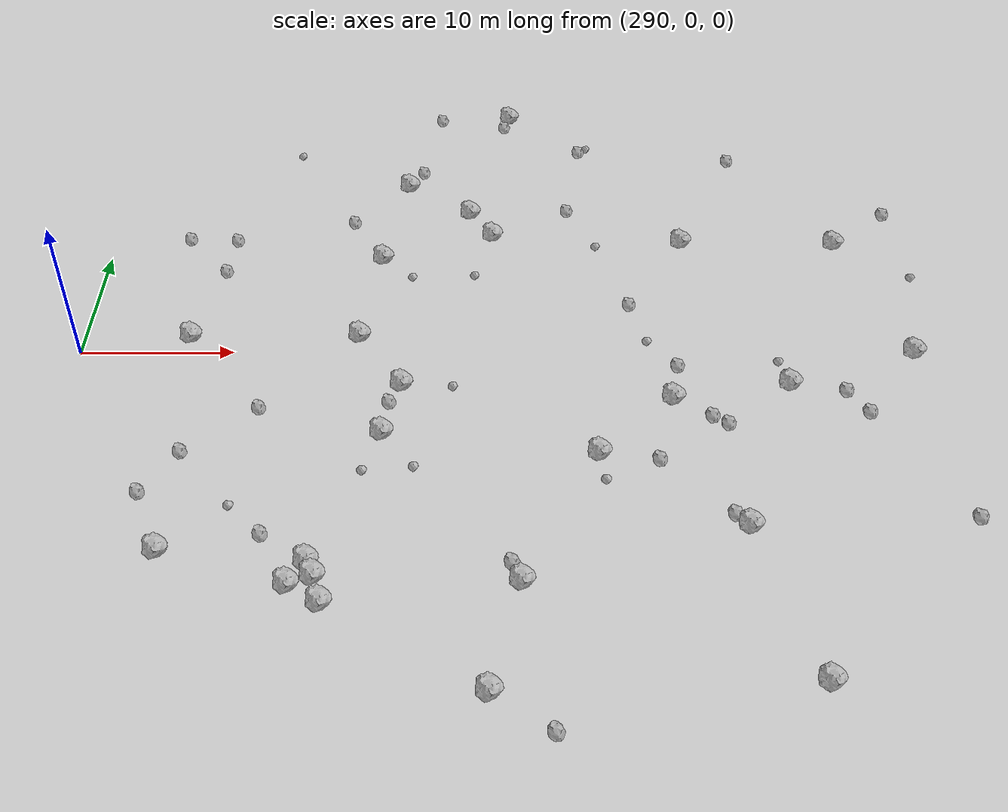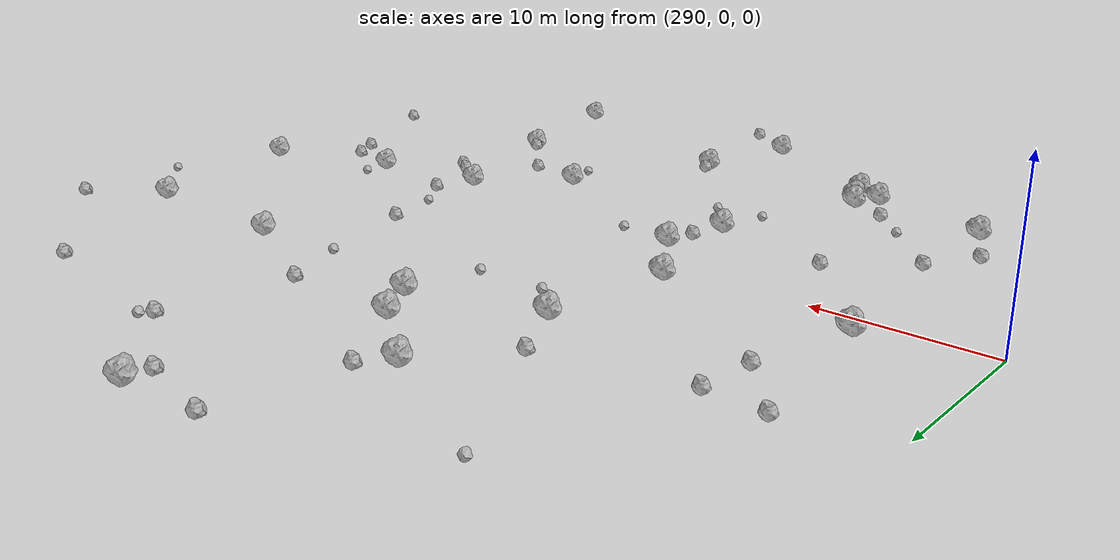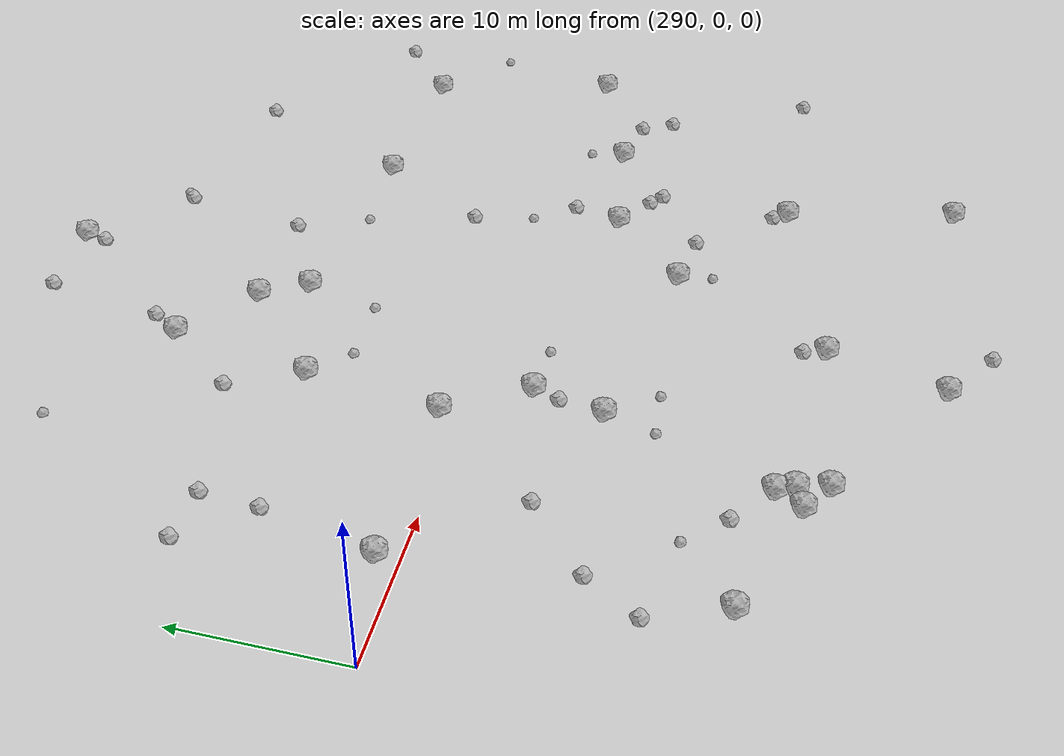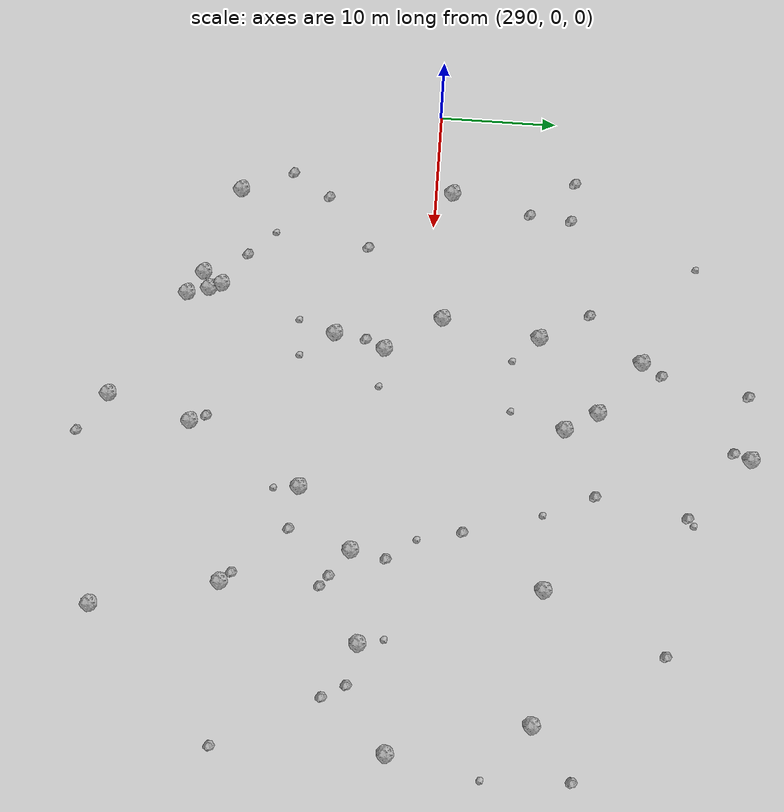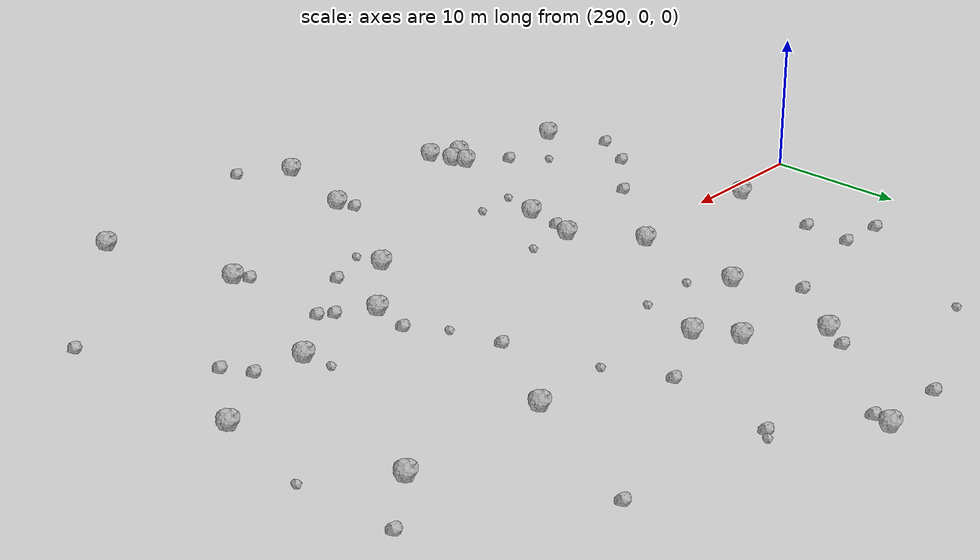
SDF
<sdf version="1.6">
 <world name="default">
  <include><uri>model://sun</uri></include>
  <model name="rock1_8_3">
   <include><uri>model://rock1</uri><pose>334.18403296895633 -26.03586462556874 0.5 0 0 0</pose></include>
  </model>
  <model name="rock1_8_4">
   <include><uri>model://rock1</uri><pose>297.94656111769064 -16.854199510235308 0.5 0 0 0</pose></include>
  </model>
  <model name="rock1_8_5">
   <include><uri>model://rock1</uri><pose>318.43136330398147 27.93874372140443 0.5 0 0 0</pose></include>
  </model>
  <model name="rock1_8_6">
   <include><uri>model://rock1</uri><pose>306.91189419088715 -18.821299159121114 0.5 0 0 0</pose></include>
  </model>
  <model name="rock1_8_7">
   <include><uri>model://rock1</uri><pose>316.98926168587894 12.224750039443002 0.5 0 0 0</pose></include>
  </model>
  <model name="rock1_8_8">
   <include><uri>model://rock1</uri><pose>306.45842718884876 -17.777883600208956 0.5 0 0 0</pose></include>
  </model>
  <model name="rock1_8_9">
   <include><uri>model://rock1</uri><pose>341.363561238803 10.849609524997092 0.5 0 0 0</pose></include>
  </model>
  <model name="rock1_8_10">
   <include><uri>model://rock1</uri><pose>330.4558595228997 11.19204198599283 0.5 0 0 0</pose></include>
  </model>
  <model name="rock1_8_11">
   <include><uri>model://rock1</uri><pose>307.43598679240523 -20.65013720608095 0.5 0 0 0</pose></include>
  </model>
  <model name="rock1_8_12">
   <include><uri>model://rock1</uri><pose>344.4403972804945 -0.819902724872005 0.5 0 0 0</pose></include>
  </model>
  <model name="rock1_8_13">
   <include><uri>model://rock1</uri><pose>316.62546214465567 -26.39837199941062 0.5 0 0 0</pose></include>
  </model>
  <model name="rock1_8_14">
   <include><uri>model://rock1</uri><pose>305.5298756407403 -19.387336846429434 0.5 0 0 0</pose></include>
  </model>
  <model name="rock1_8_15">
   <include><uri>model://rock1</uri><pose>323.3359501561919 -9.665836744280558 0.5 0 0 0</pose></include>
  </model>
  <model name="rock1_8_16">
   <include><uri>model://rock1</uri><pose>335.85235722248285 -3.7401320460476626 0.5 0 0 0</pose></include>
  </model>
  <model name="rock1_8_17">
   <include><uri>model://rock1</uri><pose>309.2696505997594 9.653800313978856 0.5 0 0 0</pose></include>
  </model>
  <model name="rock1_8_18">
   <include><uri>model://rock1</uri><pose>331.6113786422111 -15.512187746256592 0.5 0 0 0</pose></include>
  </model>
  <model name="rock1_8_19">
   <include><uri>model://rock1</uri><pose>328.29244209791057 -4.931280220551898 0.5 0 0 0</pose></include>
  </model>
  <model name="rock1_8_20">
   <include><uri>model://rock1</uri><pose>318.46529579045466 -19.323053979245824 0.5 0 0 0</pose></include>
  </model>
  <model name="rock1_8_21">
   <include><uri>model://rock1</uri><pose>315.3732827463189 14.956874589731058 0.5 0 0 0</pose></include>
  </model>
  <model name="rock1_8_22">
   <include><uri>model://rock1</uri><pose>310.81342124980125 18.445175617122565 0.5 0 0 0</pose></include>
  </model>
  <model name="rock1_8_23">
   <include><uri>model://rock1</uri><pose>308.1548986442431 1.3054651768028336 0.5 0 0 0</pose></include>
  </model>
  <model name="rock1_8_24">
   <include><uri>model://rock1</uri><pose>297.02026725107055 1.4257000871658363 0.5 0 0 0</pose></include>
  </model>
  <model name="rock1_8_25">
   <include><uri>model://rock1</uri><pose>311.127396345011 -3.4335749578912136 0.5 0 0 0</pose></include>
  </model>
  <model name="rock1_8_26">
   <include><uri>model://rock1</uri><pose>310.0876354238288 -7.748207281194855 0.5 0 0 0</pose></include>
  </model>
  <model name="rock2_8_0">
   <include><uri>model://rock2</uri><pose>322.42344670975376 15.114742259319875 0.3 0 0 0</pose></include>
  </model>
  <model name="rock2_8_1">
   <include><uri>model://rock2</uri><pose>311.80200207206207 20.232849829117413 0.3 0 0 0</pose></include>
  </model>
  <model name="rock2_8_2">
   <include><uri>model://rock2</uri><pose>323.68578922576273 22.90837922864734 0.3 0 0 0</pose></include>
  </model>
  <model name="rock2_8_3">
   <include><uri>model://rock2</uri><pose>296.0767468616941 -12.44795548550493 0.3 0 0 0</pose></include>
  </model>
  <model name="rock2_8_4">
   <include><uri>model://rock2</uri><pose>330.8284953481406 -14.623094628052549 0.3 0 0 0</pose></include>
  </model>
  <model name="rock2_8_5">
   <include><uri>model://rock2</uri><pose>344.83747546607447 -15.094902801063224 0.3 0 0 0</pose></include>
  </model>
  <model name="rock2_8_6">
   <include><uri>model://rock2</uri><pose>345.61853806028984 14.325308985729926 0.3 0 0 0</pose></include>
  </model>
  <model name="rock2_8_7">
   <include><uri>model://rock2</uri><pose>298.41277290453144 8.269030482565647 0.3 0 0 0</pose></include>
  </model>
  <model name="rock2_8_8">
   <include><uri>model://rock2</uri><pose>326.89942033668507 -10.21907907710661 0.3 0 0 0</pose></include>
  </model>
  <model name="rock2_8_9">
   <include><uri>model://rock2</uri><pose>306.9595199081837 13.886707110446878 0.3 0 0 0</pose></include>
  </model>
  <model name="rock2_8_10">
   <include><uri>model://rock2</uri><pose>319.92588388783537 -28.80906427942664 0.3 0 0 0</pose></include>
  </model>
  <model name="rock2_8_11">
   <include><uri>model://rock2</uri><pose>302.30834152033685 -5.463684974243982 0.3 0 0 0</pose></include>
  </model>
  <model name="rock2_8_12">
   <include><uri>model://rock2</uri><pose>313.0495352225929 27.658217325960827 0.3 0 0 0</pose></include>
  </model>
  <model name="rock2_8_13">
   <include><uri>model://rock2</uri><pose>303.65082401716444 -15.765172866140825 0.3 0 0 0</pose></include>
  </model>
  <model name="rock2_8_14">
   <include><uri>model://rock2</uri><pose>298.71438650238997 11.843978687256552 0.3 0 0 0</pose></include>
  </model>
  <model name="rock2_8_15">
   <include><uri>model://rock2</uri><pose>331.4277568683233 -7.259501256578904 0.3 0 0 0</pose></include>
  </model>
  <model name="rock2_8_16">
   <include><uri>model://rock2</uri><pose>328.82923220391024 -1.9614205453810563 0.3 0 0 0</pose></include>
  </model>
  <model name="rock2_8_17">
   <include><uri>model://rock2</uri><pose>339.27129648745836 -4.417340190484303 0.3 0 0 0</pose></include>
  </model>
  <model name="rock2_8_18">
   <include><uri>model://rock2</uri><pose>335.1273405626837 21.535129386576926 0.3 0 0 0</pose></include>
  </model>
  <model name="rock2_8_19">
   <include><uri>model://rock2</uri><pose>330.52218136127374 -6.567336281896072 0.3 0 0 0</pose></include>
  </model>
  <model name="rock2_8_20">
   <include><uri>model://rock2</uri><pose>340.3553579500158 -6.3670089192907895 0.3 0 0 0</pose></include>
  </model>
  <model name="rock2_8_21">
   <include><uri>model://rock2</uri><pose>326.1693035714312 4.238737393111144 0.3 0 0 0</pose></include>
  </model>
  <model name="rock2_8_22">
   <include><uri>model://rock2</uri><pose>310.39057815769195 -5.055732613756689 0.3 0 0 0</pose></include>
  </model>
  <model name="rock2_8_23">
   <include><uri>model://rock2</uri><pose>298.0243508923519 -9.185213597373544 0.3 0 0 0</pose></include>
  </model>
  <model name="rock2_8_24">
   <include><uri>model://rock2</uri><pose>295.33355927700967 12.026052712724528 0.3 0 0 0</pose></include>
  </model>
  <model name="rock2_8_25">
   <include><uri>model://rock2</uri><pose>317.90207747584583 -18.001267470805395 0.3 0 0 0</pose></include>
  </model>
  <model name="rock2_8_26">
   <include><uri>model://rock2</uri><pose>317.9683720957909 26.55912700072858 0.3 0 0 0</pose></include>
  </model>
  <model name="rock3_8_0">
   <include><uri>model://rock3</uri><pose>312.12326310996343 -10.629581491019543 0.2 0 0 0</pose></include>
  </model>
  <model name="rock3_8_1">
   <include><uri>model://rock3</uri><pose>324.2918828753278 23.416874111338444 0.2 0 0 0</pose></include>
  </model>
  <model name="rock3_8_2">
   <include><uri>model://rock3</uri><pose>301.5122570593403 -13.559748428686376 0.2 0 0 0</pose></include>
  </model>
  <model name="rock3_8_3">
   <include><uri>model://rock3</uri><pose>315.7041412881947 7.608365818521513 0.2 0 0 0</pose></include>
  </model>
  <model name="rock3_8_4">
   <include><uri>model://rock3</uri><pose>314.3639803116704 -3.6735613443646216 0.2 0 0 0</pose></include>
  </model>
  <model name="rock3_8_5">
   <include><uri>model://rock3</uri><pose>324.30142088767036 10.805480049915325 0.2 0 0 0</pose></include>
  </model>
  <model name="rock3_8_6">
   <include><uri>model://rock3</uri><pose>323.57553743435125 -11.831534525704662 0.2 0 0 0</pose></include>
  </model>
  <model name="rock3_8_7">
   <include><uri>model://rock3</uri><pose>335.4024273463198 -1.633274015309361 0.2 0 0 0</pose></include>
  </model>
  <model name="rock3_8_8">
   <include><uri>model://rock3</uri><pose>302.26544276866395 22.75126837569205 0.2 0 0 0</pose></include>
  </model>
  <model name="rock3_8_9">
   <include><uri>model://rock3</uri><pose>327.05396564944317 0.47156844249171925 0.2 0 0 0</pose></include>
  </model>
  <model name="rock3_8_10">
   <include><uri>model://rock3</uri><pose>309.062571992782 -10.8959649188186 0.2 0 0 0</pose></include>
  </model>
  <model name="rock3_8_11">
   <include><uri>model://rock3</uri><pose>345.9878447814644 6.933209998362621 0.2 0 0 0</pose></include>
  </model>
  <model name="rock3_8_12">
   <include><uri>model://rock3</uri><pose>318.56285973869916 27.807385530393212 0.2 0 0 0</pose></include>
  </model>
  <model name="rock3_8_13">
   <include><uri>model://rock3</uri><pose>311.38712339112055 7.495299279945911 0.2 0 0 0</pose></include>
  </model>
 </world>
</sdf>
